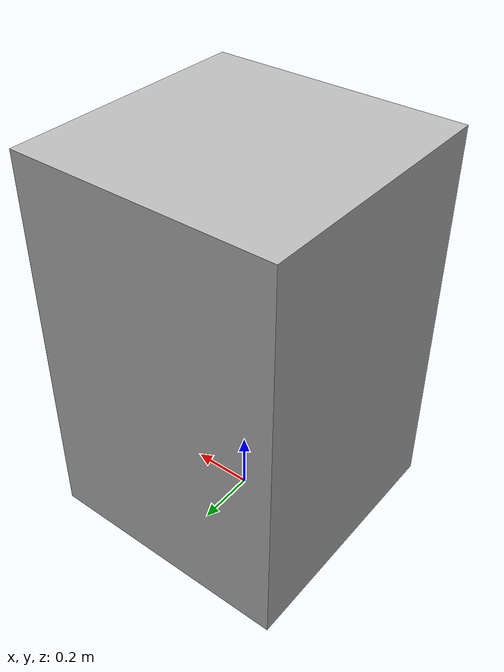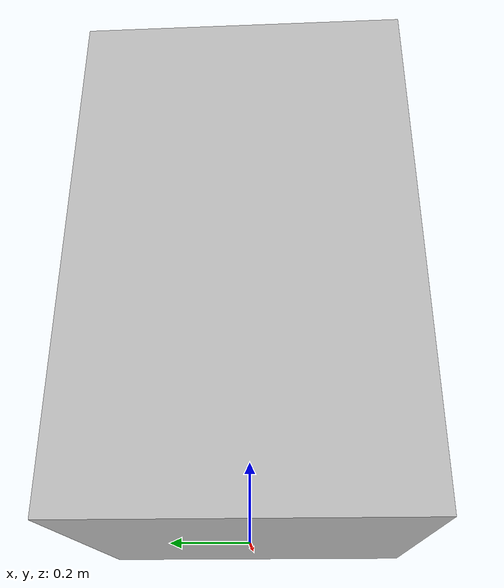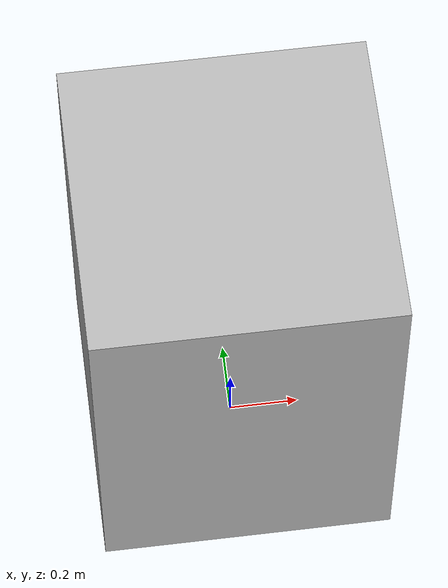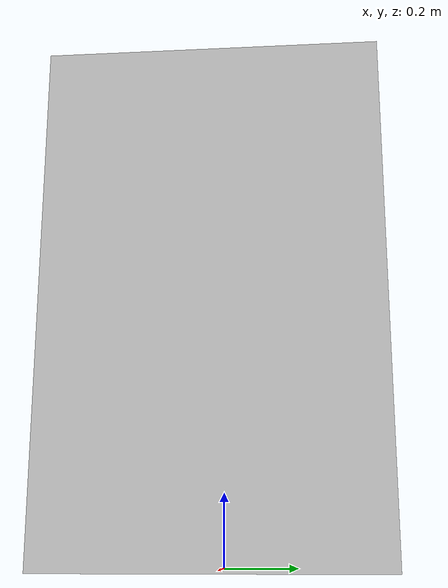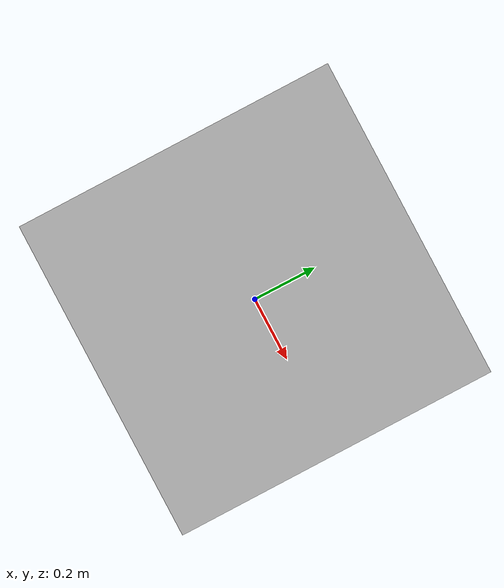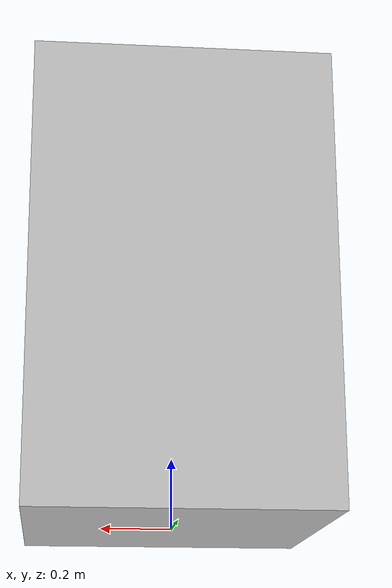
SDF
<?xml version="1.0"?>
<sdf version="1.6">
  <model name="rwc2017/teepee">
    <link name="1_link">
      <collision name="1_col">
        <geometry>
          <box>
            <size>0.84 0.84 1.3</size>
          </box>
        </geometry>
      </collision>
      <visual name="1_vis">
        <geometry>
          <box>
            <size>0.84 0.84 1.3</size>
          </box>
        </geometry>
      </visual>
      <pose>0 0 0.65 0 0 0</pose>
    </link>
    <link name="in_front_of">
      <virtual_volume name="in_front_of_vv">
        <geometry>
          <box>
            <size>0.2 0.64 0.01</size>
          </box>
        </geometry>
        <pose>1.1 0.0 0.005 0 0 0</pose>
      </virtual_volume>
    </link>
    <static>true</static>
  </model>
</sdf>
